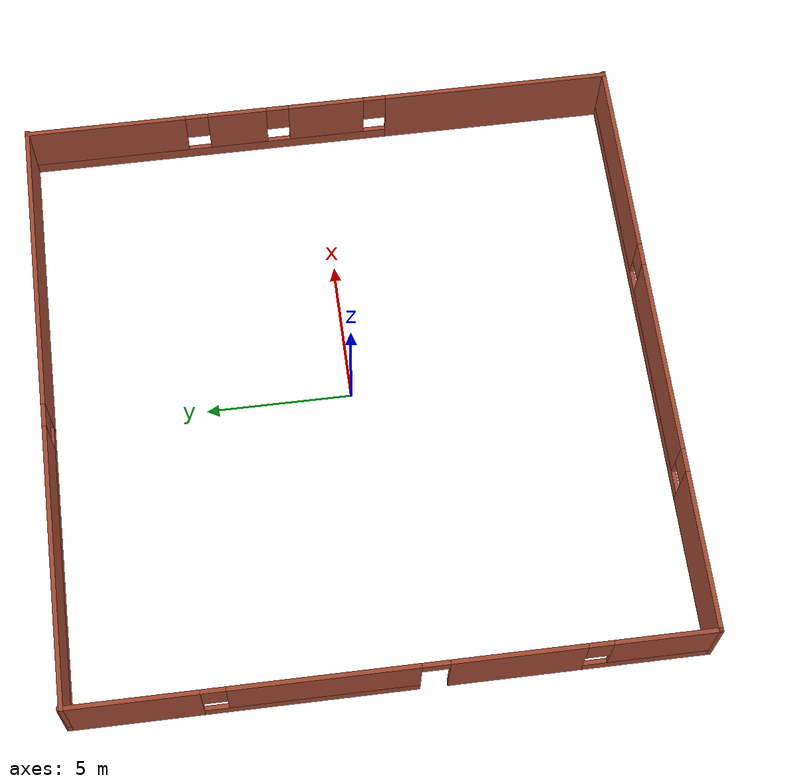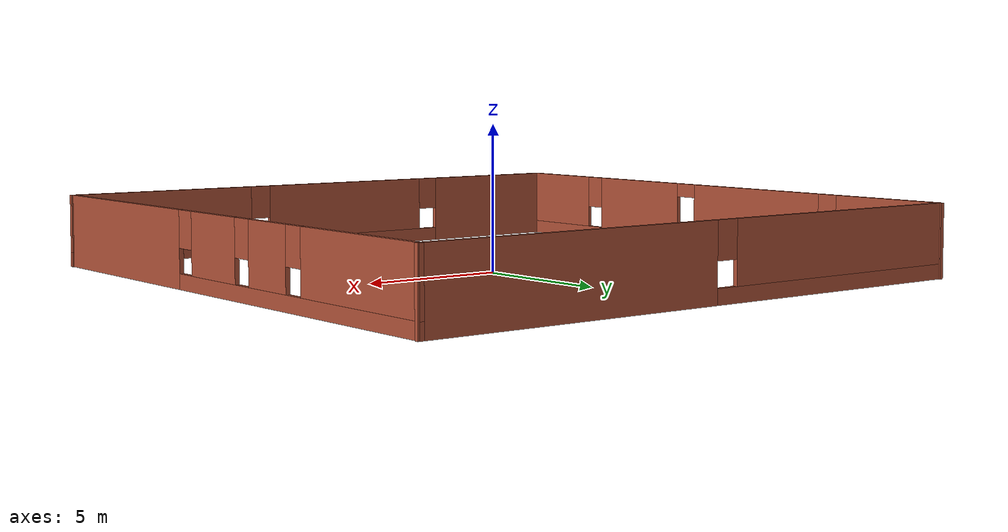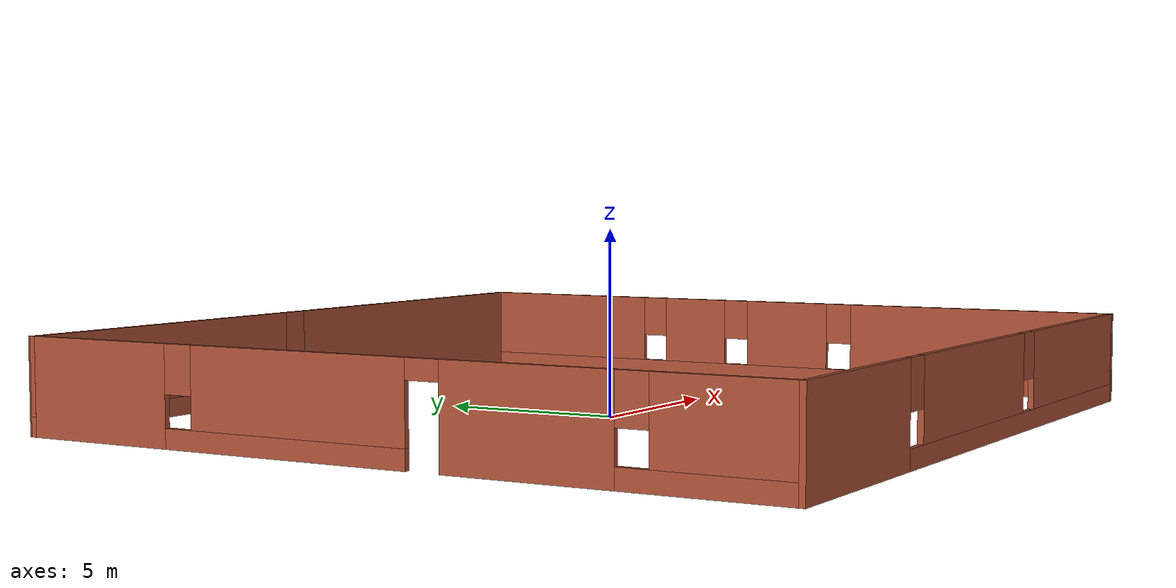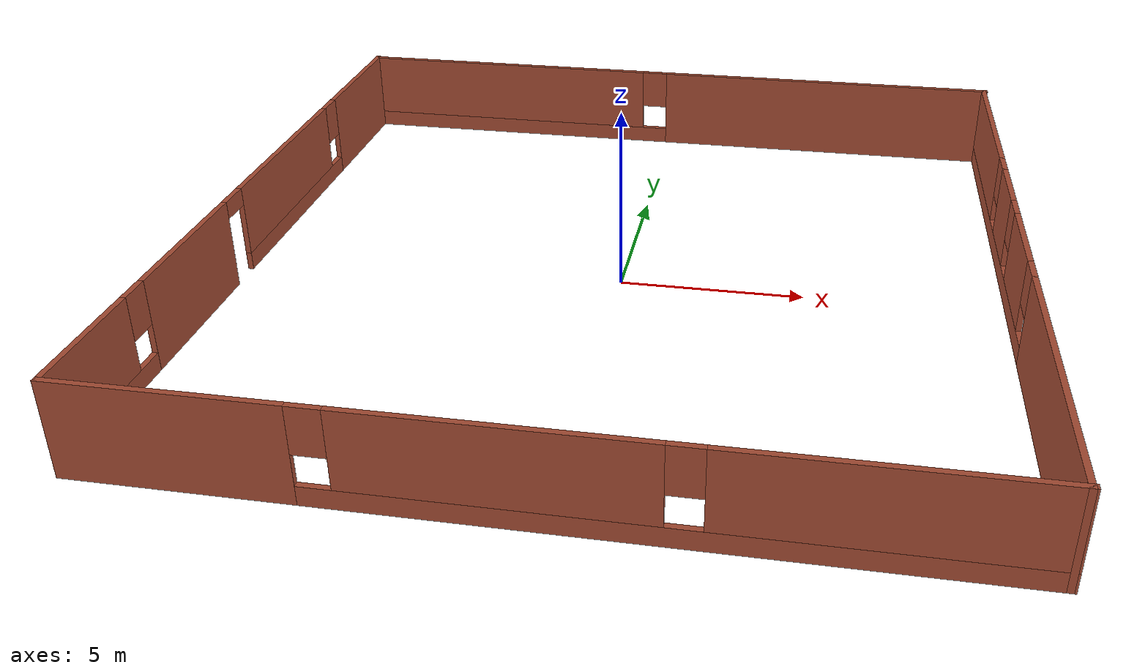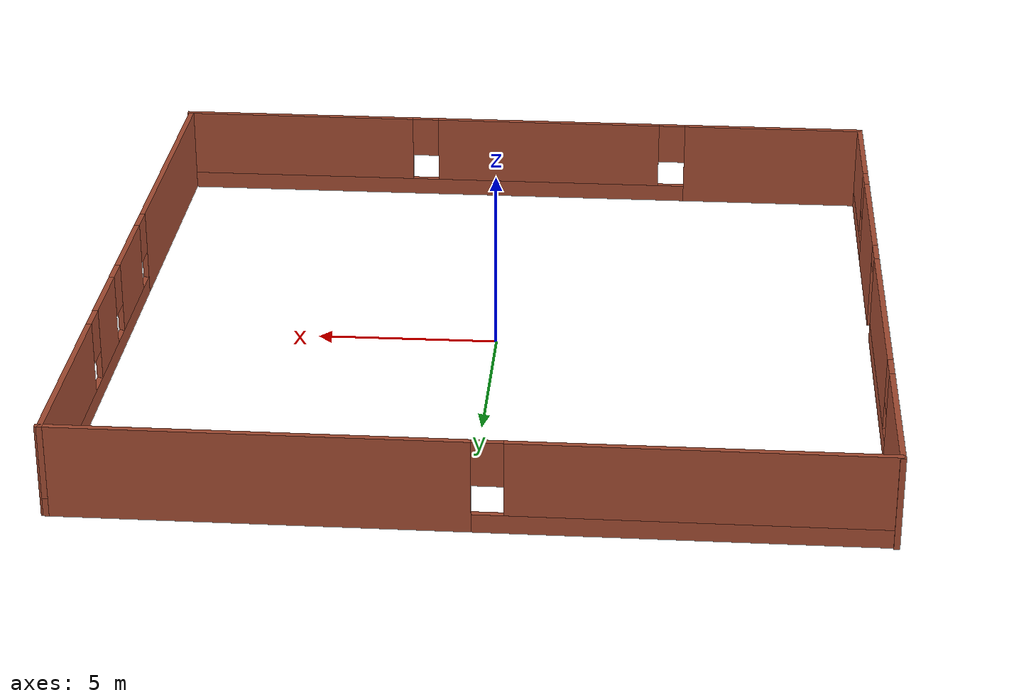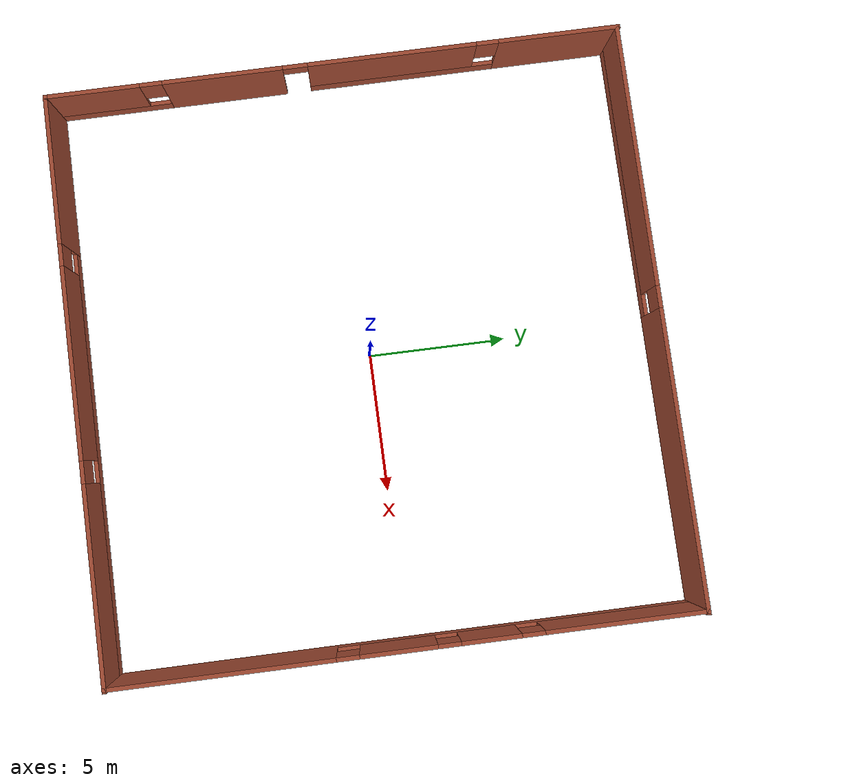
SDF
<?xml version='1.0'?>
<sdf version='1.7'>
  <model name='Walls_new'>
    <pose>-0.022718 -0.030905 0 0 -0 0</pose>
    <link name='Wall_0'>
      <pose>-10.4414 0.023262 0 0 -0 -1.57077</pose>
      <visual name='Wall_0_Visual_0'>
        <pose>-8.20797 0 1.25 0 -0 0</pose>
        <geometry>
          <box>
            <size>4.42622 0.15 2.5</size>
          </box>
        </geometry>
        <material>
          <script>
            <uri>file://media/materials/scripts/gazebo.material</uri>
            <name>Gazebo/Bricks</name>
          </script>
          <ambient>0.388235 0.270588 0.172549 1</ambient>
        </material>
        <meta>
          <layer>0</layer>
        </meta>
      </visual>
      <collision name='Wall_0_Collision_0'>
        <geometry>
          <box>
            <size>4.42622 0.15 2.5</size>
          </box>
        </geometry>
        <pose>-8.20797 0 1.25 0 -0 0</pose>
      </collision>
      <visual name='Wall_0_Visual_1'>
        <pose>4.01407 0 1.25 0 -0 0</pose>
        <geometry>
          <box>
            <size>4.36068 0.15 2.5</size>
          </box>
        </geometry>
        <material>
          <script>
            <uri>file://media/materials/scripts/gazebo.material</uri>
            <name>Gazebo/Bricks</name>
          </script>
          <ambient>0.388235 0.270588 0.172549 1</ambient>
        </material>
        <meta>
          <layer>0</layer>
        </meta>
      </visual>
      <collision name='Wall_0_Collision_1'>
        <geometry>
          <box>
            <size>4.36068 0.15 2.5</size>
          </box>
        </geometry>
        <pose>4.01407 0 1.25 0 -0 0</pose>
      </collision>
      <visual name='Wall_0_Visual_2'>
        <pose>-2.53056 0 0.25 0 -0 0</pose>
        <geometry>
          <box>
            <size>6.92859 0.15 0.5</size>
          </box>
        </geometry>
        <material>
          <script>
            <uri>file://media/materials/scripts/gazebo.material</uri>
            <name>Gazebo/Bricks</name>
          </script>
          <ambient>0.388235 0.270588 0.172549 1</ambient>
        </material>
        <meta>
          <layer>0</layer>
        </meta>
      </visual>
      <collision name='Wall_0_Collision_2'>
        <geometry>
          <box>
            <size>6.92859 0.15 0.5</size>
          </box>
        </geometry>
        <pose>-2.53056 0 0.25 0 -0 0</pose>
      </collision>
      <visual name='Wall_0_Visual_3'>
        <pose>8.30775 0 0.25 0 -0 0</pose>
        <geometry>
          <box>
            <size>4.22668 0.15 0.5</size>
          </box>
        </geometry>
        <material>
          <script>
            <uri>file://media/materials/scripts/gazebo.material</uri>
            <name>Gazebo/Bricks</name>
          </script>
          <ambient>0.388235 0.270588 0.172549 1</ambient>
        </material>
        <meta>
          <layer>0</layer>
        </meta>
      </visual>
      <collision name='Wall_0_Collision_3'>
        <geometry>
          <box>
            <size>4.22668 0.15 0.5</size>
          </box>
        </geometry>
        <pose>8.30775 0 0.25 0 -0 0</pose>
      </collision>
      <visual name='Wall_0_Visual_4'>
        <pose>-2.13056 0 1.5 0 -0 0</pose>
        <geometry>
          <box>
            <size>6.12859 0.15 2</size>
          </box>
        </geometry>
        <material>
          <script>
            <uri>file://media/materials/scripts/gazebo.material</uri>
            <name>Gazebo/Bricks</name>
          </script>
          <ambient>0.388235 0.270588 0.172549 1</ambient>
        </material>
        <meta>
          <layer>0</layer>
        </meta>
      </visual>
      <collision name='Wall_0_Collision_4'>
        <geometry>
          <box>
            <size>6.12859 0.15 2</size>
          </box>
        </geometry>
        <pose>-2.13056 0 1.5 0 -0 0</pose>
      </collision>
      <visual name='Wall_0_Visual_5'>
        <pose>-2.13056 0 1.5 0 -0 0</pose>
        <geometry>
          <box>
            <size>6.12859 0.15 2</size>
          </box>
        </geometry>
        <material>
          <script>
            <uri>file://media/materials/scripts/gazebo.material</uri>
            <name>Gazebo/Bricks</name>
          </script>
          <ambient>0.388235 0.270588 0.172549 1</ambient>
        </material>
        <meta>
          <layer>0</layer>
        </meta>
      </visual>
      <collision name='Wall_0_Collision_5'>
        <geometry>
          <box>
            <size>6.12859 0.15 2</size>
          </box>
        </geometry>
        <pose>-2.13056 0 1.5 0 -0 0</pose>
      </collision>
      <visual name='Wall_0_Visual_6'>
        <pose>8.70774 0 1.5 0 -0 0</pose>
        <geometry>
          <box>
            <size>3.42668 0.15 2</size>
          </box>
        </geometry>
        <material>
          <script>
            <uri>file://media/materials/scripts/gazebo.material</uri>
            <name>Gazebo/Bricks</name>
          </script>
          <ambient>0.388235 0.270588 0.172549 1</ambient>
        </material>
        <meta>
          <layer>0</layer>
        </meta>
      </visual>
      <collision name='Wall_0_Collision_6'>
        <geometry>
          <box>
            <size>3.42668 0.15 2</size>
          </box>
        </geometry>
        <pose>8.70774 0 1.5 0 -0 0</pose>
      </collision>
      <visual name='Wall_0_Visual_7'>
        <pose>-5.59486 0 1.9 0 -0 0</pose>
        <geometry>
          <box>
            <size>0.8 0.15 1.2</size>
          </box>
        </geometry>
        <material>
          <script>
            <uri>file://media/materials/scripts/gazebo.material</uri>
            <name>Gazebo/Bricks</name>
          </script>
          <ambient>0.388235 0.270588 0.172549 1</ambient>
        </material>
        <meta>
          <layer>0</layer>
        </meta>
      </visual>
      <collision name='Wall_0_Collision_7'>
        <geometry>
          <box>
            <size>0.8 0.15 1.2</size>
          </box>
        </geometry>
        <pose>-5.59486 0 1.9 0 -0 0</pose>
      </collision>
      <visual name='Wall_0_Visual_8'>
        <pose>6.59441 0 1.9 0 -0 0</pose>
        <geometry>
          <box>
            <size>0.8 0.15 1.2</size>
          </box>
        </geometry>
        <material>
          <script>
            <uri>file://media/materials/scripts/gazebo.material</uri>
            <name>Gazebo/Bricks</name>
          </script>
          <ambient>0.388235 0.270588 0.172549 1</ambient>
        </material>
        <meta>
          <layer>0</layer>
        </meta>
      </visual>
      <collision name='Wall_0_Collision_8'>
        <geometry>
          <box>
            <size>0.8 0.15 1.2</size>
          </box>
        </geometry>
        <pose>6.59441 0 1.9 0 -0 0</pose>
      </collision>
      <visual name='Wall_0_Visual_9'>
        <pose>1.38373 0 2.25 0 -0 0</pose>
        <geometry>
          <box>
            <size>0.9 0.15 0.5</size>
          </box>
        </geometry>
        <material>
          <script>
            <uri>file://media/materials/scripts/gazebo.material</uri>
            <name>Gazebo/Bricks</name>
          </script>
          <ambient>0.388235 0.270588 0.172549 1</ambient>
        </material>
        <meta>
          <layer>0</layer>
        </meta>
      </visual>
      <collision name='Wall_0_Collision_9'>
        <geometry>
          <box>
            <size>0.9 0.15 0.5</size>
          </box>
        </geometry>
        <pose>1.38373 0 2.25 0 -0 0</pose>
      </collision>
      <visual name='Wall_0_Visual_10'>
        <pose>1.38373 0 2.25 0 -0 0</pose>
        <geometry>
          <box>
            <size>0.9 0.15 0.5</size>
          </box>
        </geometry>
        <material>
          <script>
            <uri>file://media/materials/scripts/gazebo.material</uri>
            <name>Gazebo/Bricks</name>
          </script>
          <ambient>0.388235 0.270588 0.172549 1</ambient>
        </material>
        <meta>
          <layer>0</layer>
        </meta>
      </visual>
      <collision name='Wall_0_Collision_10'>
        <geometry>
          <box>
            <size>0.9 0.15 0.5</size>
          </box>
        </geometry>
        <pose>1.38373 0 2.25 0 -0 0</pose>
      </collision>
    </link>
    <link name='Wall_1'>
      <pose>0.000262 -10.3693 0 0 -0 0</pose>
      <visual name='Wall_1_Visual_0'>
        <pose>-7.78965 0 1.25 0 -0 0</pose>
        <geometry>
          <box>
            <size>5.45401 0.15 2.5</size>
          </box>
        </geometry>
        <material>
          <script>
            <uri>file://media/materials/scripts/gazebo.material</uri>
            <name>Gazebo/Bricks</name>
          </script>
          <ambient>0.388235 0.270588 0.172549 1</ambient>
        </material>
        <meta>
          <layer>0</layer>
        </meta>
      </visual>
      <collision name='Wall_1_Collision_0'>
        <geometry>
          <box>
            <size>5.45401 0.15 2.5</size>
          </box>
        </geometry>
        <pose>-7.78965 0 1.25 0 -0 0</pose>
      </collision>
      <visual name='Wall_1_Visual_1'>
        <pose>2.72701 0 0.25 0 -0 0</pose>
        <geometry>
          <box>
            <size>15.5793 0.15 0.5</size>
          </box>
        </geometry>
        <material>
          <script>
            <uri>file://media/materials/scripts/gazebo.material</uri>
            <name>Gazebo/Bricks</name>
          </script>
          <ambient>0.388235 0.270588 0.172549 1</ambient>
        </material>
        <meta>
          <layer>0</layer>
        </meta>
      </visual>
      <collision name='Wall_1_Collision_1'>
        <geometry>
          <box>
            <size>15.5793 0.15 0.5</size>
          </box>
        </geometry>
        <pose>2.72701 0 0.25 0 -0 0</pose>
      </collision>
      <visual name='Wall_1_Visual_2'>
        <pose>-0.82442 0 1.5 0 -0 0</pose>
        <geometry>
          <box>
            <size>6.87645 0.15 2</size>
          </box>
        </geometry>
        <material>
          <script>
            <uri>file://media/materials/scripts/gazebo.material</uri>
            <name>Gazebo/Bricks</name>
          </script>
          <ambient>0.388235 0.270588 0.172549 1</ambient>
        </material>
        <meta>
          <layer>0</layer>
        </meta>
      </visual>
      <collision name='Wall_1_Collision_2'>
        <geometry>
          <box>
            <size>6.87645 0.15 2</size>
          </box>
        </geometry>
        <pose>-0.82442 0 1.5 0 -0 0</pose>
      </collision>
      <visual name='Wall_1_Visual_3'>
        <pose>6.96523 0 1.5 0 -0 0</pose>
        <geometry>
          <box>
            <size>7.10285 0.15 2</size>
          </box>
        </geometry>
        <material>
          <script>
            <uri>file://media/materials/scripts/gazebo.material</uri>
            <name>Gazebo/Bricks</name>
          </script>
          <ambient>0.388235 0.270588 0.172549 1</ambient>
        </material>
        <meta>
          <layer>0</layer>
        </meta>
      </visual>
      <collision name='Wall_1_Collision_3'>
        <geometry>
          <box>
            <size>7.10285 0.15 2</size>
          </box>
        </geometry>
        <pose>6.96523 0 1.5 0 -0 0</pose>
      </collision>
      <visual name='Wall_1_Visual_4'>
        <pose>-4.66264 0 1.9 0 -0 0</pose>
        <geometry>
          <box>
            <size>0.8 0.15 1.2</size>
          </box>
        </geometry>
        <material>
          <script>
            <uri>file://media/materials/scripts/gazebo.material</uri>
            <name>Gazebo/Bricks</name>
          </script>
          <ambient>0.388235 0.270588 0.172549 1</ambient>
        </material>
        <meta>
          <layer>0</layer>
        </meta>
      </visual>
      <collision name='Wall_1_Collision_4'>
        <geometry>
          <box>
            <size>0.8 0.15 1.2</size>
          </box>
        </geometry>
        <pose>-4.66264 0 1.9 0 -0 0</pose>
      </collision>
      <visual name='Wall_1_Visual_5'>
        <pose>3.0138 0 1.9 0 -0 0</pose>
        <geometry>
          <box>
            <size>0.8 0.15 1.2</size>
          </box>
        </geometry>
        <material>
          <script>
            <uri>file://media/materials/scripts/gazebo.material</uri>
            <name>Gazebo/Bricks</name>
          </script>
          <ambient>0.388235 0.270588 0.172549 1</ambient>
        </material>
        <meta>
          <layer>0</layer>
        </meta>
      </visual>
      <collision name='Wall_1_Collision_5'>
        <geometry>
          <box>
            <size>0.8 0.15 1.2</size>
          </box>
        </geometry>
        <pose>3.0138 0 1.9 0 -0 0</pose>
      </collision>
    </link>
    <link name='Wall_2'>
      <pose>10.3949 -0.023262 0 0 -0 1.57082</pose>
      <visual name='Wall_2_Visual_0'>
        <pose>-6.42807 0 1.25 0 -0 0</pose>
        <geometry>
          <box>
            <size>7.98602 0.15 2.5</size>
          </box>
        </geometry>
        <material>
          <script>
            <uri>file://media/materials/scripts/gazebo.material</uri>
            <name>Gazebo/Bricks</name>
          </script>
          <ambient>0.388235 0.270588 0.172549 1</ambient>
        </material>
        <meta>
          <layer>0</layer>
        </meta>
      </visual>
      <collision name='Wall_2_Collision_0'>
        <geometry>
          <box>
            <size>7.98602 0.15 2.5</size>
          </box>
        </geometry>
        <pose>-6.42807 0 1.25 0 -0 0</pose>
      </collision>
      <visual name='Wall_2_Visual_1'>
        <pose>3.99301 0 0.25 0 -0 0</pose>
        <geometry>
          <box>
            <size>12.8561 0.15 0.5</size>
          </box>
        </geometry>
        <material>
          <script>
            <uri>file://media/materials/scripts/gazebo.material</uri>
            <name>Gazebo/Bricks</name>
          </script>
          <ambient>0.388235 0.270588 0.172549 1</ambient>
        </material>
        <meta>
          <layer>0</layer>
        </meta>
      </visual>
      <collision name='Wall_2_Collision_1'>
        <geometry>
          <box>
            <size>12.8561 0.15 0.5</size>
          </box>
        </geometry>
        <pose>3.99301 0 0.25 0 -0 0</pose>
      </collision>
      <visual name='Wall_2_Visual_2'>
        <pose>-0.290418 0 1.5 0 -0 0</pose>
        <geometry>
          <box>
            <size>2.68929 0.15 2</size>
          </box>
        </geometry>
        <material>
          <script>
            <uri>file://media/materials/scripts/gazebo.material</uri>
            <name>Gazebo/Bricks</name>
          </script>
          <ambient>0.388235 0.270588 0.172549 1</ambient>
        </material>
        <meta>
          <layer>0</layer>
        </meta>
      </visual>
      <collision name='Wall_2_Collision_2'>
        <geometry>
          <box>
            <size>2.68929 0.15 2</size>
          </box>
        </geometry>
        <pose>-0.290418 0 1.5 0 -0 0</pose>
      </collision>
      <visual name='Wall_2_Visual_3'>
        <pose>2.89647 0 1.5 0 -0 0</pose>
        <geometry>
          <box>
            <size>2.08449 0.15 2</size>
          </box>
        </geometry>
        <material>
          <script>
            <uri>file://media/materials/scripts/gazebo.material</uri>
            <name>Gazebo/Bricks</name>
          </script>
          <ambient>0.388235 0.270588 0.172549 1</ambient>
        </material>
        <meta>
          <layer>0</layer>
        </meta>
      </visual>
      <collision name='Wall_2_Collision_3'>
        <geometry>
          <box>
            <size>2.08449 0.15 2</size>
          </box>
        </geometry>
        <pose>2.89647 0 1.5 0 -0 0</pose>
      </collision>
      <visual name='Wall_2_Visual_4'>
        <pose>7.5799 0 1.5 0 -0 0</pose>
        <geometry>
          <box>
            <size>5.68237 0.15 2</size>
          </box>
        </geometry>
        <material>
          <script>
            <uri>file://media/materials/scripts/gazebo.material</uri>
            <name>Gazebo/Bricks</name>
          </script>
          <ambient>0.388235 0.270588 0.172549 1</ambient>
        </material>
        <meta>
          <layer>0</layer>
        </meta>
      </visual>
      <collision name='Wall_2_Collision_4'>
        <geometry>
          <box>
            <size>5.68237 0.15 2</size>
          </box>
        </geometry>
        <pose>7.5799 0 1.5 0 -0 0</pose>
      </collision>
      <visual name='Wall_2_Visual_5'>
        <pose>-2.03506 0 1.9 0 -0 0</pose>
        <geometry>
          <box>
            <size>0.8 0.15 1.2</size>
          </box>
        </geometry>
        <material>
          <script>
            <uri>file://media/materials/scripts/gazebo.material</uri>
            <name>Gazebo/Bricks</name>
          </script>
          <ambient>0.388235 0.270588 0.172549 1</ambient>
        </material>
        <meta>
          <layer>0</layer>
        </meta>
      </visual>
      <collision name='Wall_2_Collision_5'>
        <geometry>
          <box>
            <size>0.8 0.15 1.2</size>
          </box>
        </geometry>
        <pose>-2.03506 0 1.9 0 -0 0</pose>
      </collision>
      <visual name='Wall_2_Visual_6'>
        <pose>1.45423 0 1.9 0 -0 0</pose>
        <geometry>
          <box>
            <size>0.8 0.15 1.2</size>
          </box>
        </geometry>
        <material>
          <script>
            <uri>file://media/materials/scripts/gazebo.material</uri>
            <name>Gazebo/Bricks</name>
          </script>
          <ambient>0.388235 0.270588 0.172549 1</ambient>
        </material>
        <meta>
          <layer>0</layer>
        </meta>
      </visual>
      <collision name='Wall_2_Collision_6'>
        <geometry>
          <box>
            <size>0.8 0.15 1.2</size>
          </box>
        </geometry>
        <pose>1.45423 0 1.9 0 -0 0</pose>
      </collision>
      <visual name='Wall_2_Visual_7'>
        <pose>4.33872 0 1.9 0 -0 0</pose>
        <geometry>
          <box>
            <size>0.8 0.15 1.2</size>
          </box>
        </geometry>
        <material>
          <script>
            <uri>file://media/materials/scripts/gazebo.material</uri>
            <name>Gazebo/Bricks</name>
          </script>
          <ambient>0.388235 0.270588 0.172549 1</ambient>
        </material>
        <meta>
          <layer>0</layer>
        </meta>
      </visual>
      <collision name='Wall_2_Collision_7'>
        <geometry>
          <box>
            <size>0.8 0.15 1.2</size>
          </box>
        </geometry>
        <pose>4.33872 0 1.9 0 -0 0</pose>
      </collision>
    </link>
    <link name='Wall_3'>
      <pose>-0.000263 10.3228 0 0 -0 3.14159</pose>
      <visual name='Wall_3_Visual_0'>
        <pose>-5.19758 0 1.25 0 -0 0</pose>
        <geometry>
          <box>
            <size>10.6381 0.15 2.5</size>
          </box>
        </geometry>
        <material>
          <script>
            <uri>file://media/materials/scripts/gazebo.material</uri>
            <name>Gazebo/Bricks</name>
          </script>
          <ambient>0.388235 0.270588 0.172549 1</ambient>
        </material>
        <meta>
          <layer>0</layer>
        </meta>
      </visual>
      <collision name='Wall_3_Collision_0'>
        <geometry>
          <box>
            <size>10.6381 0.15 2.5</size>
          </box>
        </geometry>
        <pose>-5.19758 0 1.25 0 -0 0</pose>
      </collision>
      <visual name='Wall_3_Visual_1'>
        <pose>5.31907 0 0.25 0 -0 0</pose>
        <geometry>
          <box>
            <size>10.3952 0.15 0.5</size>
          </box>
        </geometry>
        <material>
          <script>
            <uri>file://media/materials/scripts/gazebo.material</uri>
            <name>Gazebo/Bricks</name>
          </script>
          <ambient>0.388235 0.270588 0.172549 1</ambient>
        </material>
        <meta>
          <layer>0</layer>
        </meta>
      </visual>
      <collision name='Wall_3_Collision_1'>
        <geometry>
          <box>
            <size>10.3952 0.15 0.5</size>
          </box>
        </geometry>
        <pose>5.31907 0 0.25 0 -0 0</pose>
      </collision>
      <visual name='Wall_3_Visual_2'>
        <pose>5.71907 0 1.5 0 -0 0</pose>
        <geometry>
          <box>
            <size>9.59516 0.15 2</size>
          </box>
        </geometry>
        <material>
          <script>
            <uri>file://media/materials/scripts/gazebo.material</uri>
            <name>Gazebo/Bricks</name>
          </script>
          <ambient>0.388235 0.270588 0.172549 1</ambient>
        </material>
        <meta>
          <layer>0</layer>
        </meta>
      </visual>
      <collision name='Wall_3_Collision_2'>
        <geometry>
          <box>
            <size>9.59516 0.15 2</size>
          </box>
        </geometry>
        <pose>5.71907 0 1.5 0 -0 0</pose>
      </collision>
      <visual name='Wall_3_Visual_3'>
        <pose>0.521489 0 1.9 0 -0 0</pose>
        <geometry>
          <box>
            <size>0.8 0.15 1.2</size>
          </box>
        </geometry>
        <material>
          <script>
            <uri>file://media/materials/scripts/gazebo.material</uri>
            <name>Gazebo/Bricks</name>
          </script>
          <ambient>0.388235 0.270588 0.172549 1</ambient>
        </material>
        <meta>
          <layer>0</layer>
        </meta>
      </visual>
      <collision name='Wall_3_Collision_3'>
        <geometry>
          <box>
            <size>0.8 0.15 1.2</size>
          </box>
        </geometry>
        <pose>0.521489 0 1.9 0 -0 0</pose>
      </collision>
    </link>
    <static>1</static>
  </model>
</sdf>
